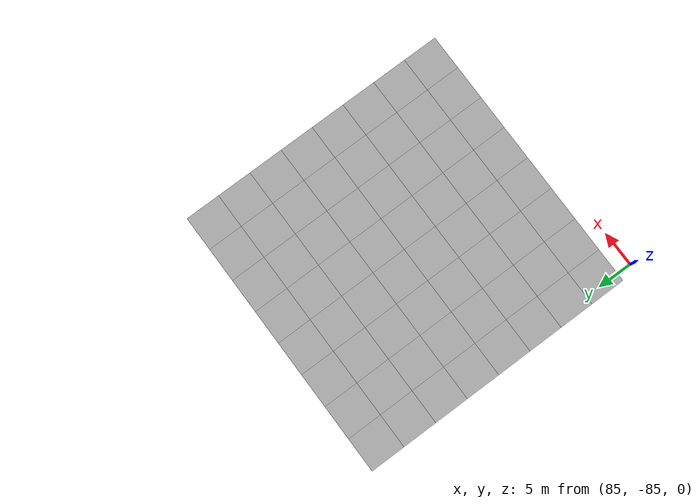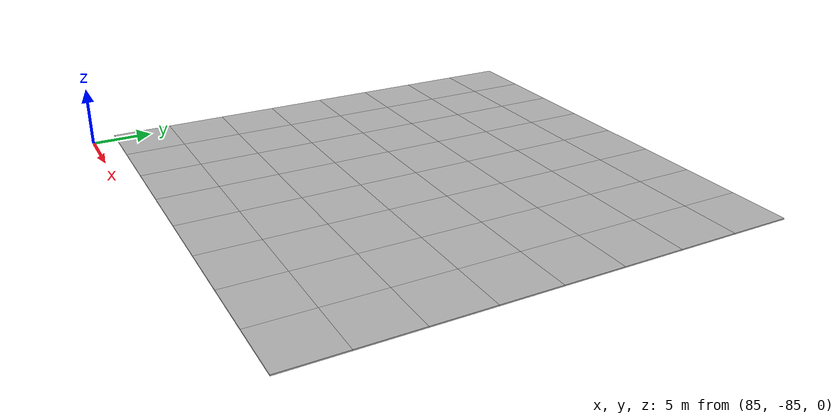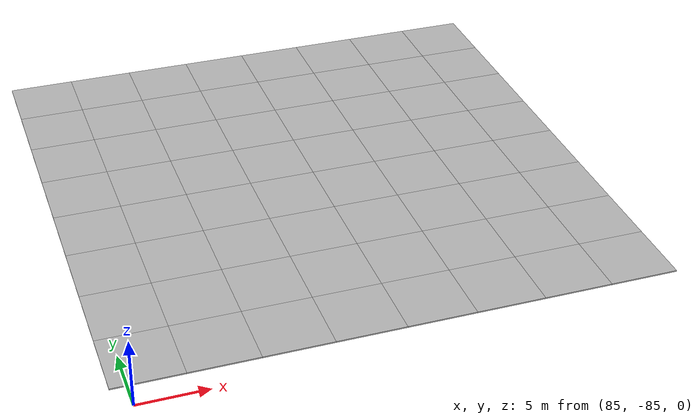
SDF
<sdf version="1.7">
 <world name="default">
  <model name="mud_plane_80x80_5">
   <model name="mud_plane_40x40_2">
    <model name="mud_plane_20x20">
     <model name="mud_plane">
      <static>1</static>
      <link name="link">
       <collision name="collision"><geometry><box><size>10 10 0.1</size></box></geometry></collision>
       <visual name="visual_1">
        <pose>-2.5 2.5 -0.05 0 -0 0</pose>
        <cast_shadows>0</cast_shadows>
        <geometry><box><size>5 5 0.1</size></box></geometry>
        <material>
         <script>
          <uri>model://mud_plane/materials/scripts</uri>
          <uri>model://mud_plane/materials/textures</uri>
          <name>vrc/mud</name>
         </script>
        </material>
       </visual>
       <visual name="visual_2">
        <pose>2.5 2.5 -0.05 0 -0 0</pose>
        <cast_shadows>0</cast_shadows>
        <geometry><box><size>5 5 0.1</size></box></geometry>
        <material>
         <script>
          <uri>model://mud_plane/materials/scripts</uri>
          <uri>model://mud_plane/materials/textures</uri>
          <name>vrc/mud</name>
         </script>
        </material>
       </visual>
       <visual name="visual_3">
        <pose>2.5 -2.5 -0.05 0 -0 0</pose>
        <cast_shadows>0</cast_shadows>
        <geometry><box><size>5 5 0.1</size></box></geometry>
        <material>
         <script>
          <uri>model://mud_plane/materials/scripts</uri>
          <uri>model://mud_plane/materials/textures</uri>
          <name>vrc/mud</name>
         </script>
        </material>
       </visual>
       <visual name="visual_4">
        <pose>-2.5 -2.5 -0.05 0 -0 0</pose>
        <cast_shadows>0</cast_shadows>
        <geometry><box><size>5 5 0.1</size></box></geometry>
        <material>
         <script>
          <uri>model://mud_plane/materials/scripts</uri>
          <uri>model://mud_plane/materials/textures</uri>
          <name>vrc/mud</name>
         </script>
        </material>
       </visual>
      </link>
      <pose>-4.99986 -4.99991 0 0 -0 0</pose>
     </model>
     <model name="mud_plane_0">
      <static>1</static>
      <link name="link">
       <collision name="collision"><geometry><box><size>10 10 0.1</size></box></geometry></collision>
       <visual name="visual_1">
        <pose>-2.5 2.5 -0.05 0 -0 0</pose>
        <cast_shadows>0</cast_shadows>
        <geometry><box><size>5 5 0.1</size></box></geometry>
        <material>
         <script>
          <uri>model://mud_plane/materials/scripts</uri>
          <uri>model://mud_plane/materials/textures</uri>
          <name>vrc/mud</name>
         </script>
        </material>
       </visual>
       <visual name="visual_2">
        <pose>2.5 2.5 -0.05 0 -0 0</pose>
        <cast_shadows>0</cast_shadows>
        <geometry><box><size>5 5 0.1</size></box></geometry>
        <material>
         <script>
          <uri>model://mud_plane/materials/scripts</uri>
          <uri>model://mud_plane/materials/textures</uri>
          <name>vrc/mud</name>
         </script>
        </material>
       </visual>
       <visual name="visual_3">
        <pose>2.5 -2.5 -0.05 0 -0 0</pose>
        <cast_shadows>0</cast_shadows>
        <geometry><box><size>5 5 0.1</size></box></geometry>
        <material>
         <script>
          <uri>model://mud_plane/materials/scripts</uri>
          <uri>model://mud_plane/materials/textures</uri>
          <name>vrc/mud</name>
         </script>
        </material>
       </visual>
       <visual name="visual_4">
        <pose>-2.5 -2.5 -0.05 0 -0 0</pose>
        <cast_shadows>0</cast_shadows>
        <geometry><box><size>5 5 0.1</size></box></geometry>
        <material>
         <script>
          <uri>model://mud_plane/materials/scripts</uri>
          <uri>model://mud_plane/materials/textures</uri>
          <name>vrc/mud</name>
         </script>
        </material>
       </visual>
      </link>
      <pose>-4.99946 4.99954 0 0 -0 0</pose>
     </model>
     <model name="mud_plane_1">
      <static>1</static>
      <link name="link">
       <collision name="collision"><geometry><box><size>10 10 0.1</size></box></geometry></collision>
       <visual name="visual_1">
        <pose>-2.5 2.5 -0.05 0 -0 0</pose>
        <cast_shadows>0</cast_shadows>
        <geometry><box><size>5 5 0.1</size></box></geometry>
        <material>
         <script>
          <uri>model://mud_plane/materials/scripts</uri>
          <uri>model://mud_plane/materials/textures</uri>
          <name>vrc/mud</name>
         </script>
        </material>
       </visual>
       <visual name="visual_2">
        <pose>2.5 2.5 -0.05 0 -0 0</pose>
        <cast_shadows>0</cast_shadows>
        <geometry><box><size>5 5 0.1</size></box></geometry>
        <material>
         <script>
          <uri>model://mud_plane/materials/scripts</uri>
          <uri>model://mud_plane/materials/textures</uri>
          <name>vrc/mud</name>
         </script>
        </material>
       </visual>
       <visual name="visual_3">
        <pose>2.5 -2.5 -0.05 0 -0 0</pose>
        <cast_shadows>0</cast_shadows>
        <geometry><box><size>5 5 0.1</size></box></geometry>
        <material>
         <script>
          <uri>model://mud_plane/materials/scripts</uri>
          <uri>model://mud_plane/materials/textures</uri>
          <name>vrc/mud</name>
         </script>
        </material>
       </visual>
       <visual name="visual_4">
        <pose>-2.5 -2.5 -0.05 0 -0 0</pose>
        <cast_shadows>0</cast_shadows>
        <geometry><box><size>5 5 0.1</size></box></geometry>
        <material>
         <script>
          <uri>model://mud_plane/materials/scripts</uri>
          <uri>model://mud_plane/materials/textures</uri>
          <name>vrc/mud</name>
         </script>
        </material>
       </visual>
      </link>
      <pose>4.99964 -4.99949 0 0 -0 0</pose>
     </model>
     <model name="mud_plane_2">
      <static>1</static>
      <link name="link">
       <collision name="collision"><geometry><box><size>10 10 0.1</size></box></geometry></collision>
       <visual name="visual_1">
        <pose>-2.5 2.5 -0.05 0 -0 0</pose>
        <cast_shadows>0</cast_shadows>
        <geometry><box><size>5 5 0.1</size></box></geometry>
        <material>
         <script>
          <uri>model://mud_plane/materials/scripts</uri>
          <uri>model://mud_plane/materials/textures</uri>
          <name>vrc/mud</name>
         </script>
        </material>
       </visual>
       <visual name="visual_2">
        <pose>2.5 2.5 -0.05 0 -0 0</pose>
        <cast_shadows>0</cast_shadows>
        <geometry><box><size>5 5 0.1</size></box></geometry>
        <material>
         <script>
          <uri>model://mud_plane/materials/scripts</uri>
          <uri>model://mud_plane/materials/textures</uri>
          <name>vrc/mud</name>
         </script>
        </material>
       </visual>
       <visual name="visual_3">
        <pose>2.5 -2.5 -0.05 0 -0 0</pose>
        <cast_shadows>0</cast_shadows>
        <geometry><box><size>5 5 0.1</size></box></geometry>
        <material>
         <script>
          <uri>model://mud_plane/materials/scripts</uri>
          <uri>model://mud_plane/materials/textures</uri>
          <name>vrc/mud</name>
         </script>
        </material>
       </visual>
       <visual name="visual_4">
        <pose>-2.5 -2.5 -0.05 0 -0 0</pose>
        <cast_shadows>0</cast_shadows>
        <geometry><box><size>5 5 0.1</size></box></geometry>
        <material>
         <script>
          <uri>model://mud_plane/materials/scripts</uri>
          <uri>model://mud_plane/materials/textures</uri>
          <name>vrc/mud</name>
         </script>
        </material>
       </visual>
      </link>
      <pose>4.99967 4.99986 0 0 -0 0</pose>
     </model>
     <static>0</static>
     <pose>-9.99895 9.99843 0 0 -0 0</pose>
    </model>
    <model name="mud_plane_20x20_0">
     <model name="mud_plane">
      <static>1</static>
      <link name="link">
       <collision name="collision"><geometry><box><size>10 10 0.1</size></box></geometry></collision>
       <visual name="visual_1">
        <pose>-2.5 2.5 -0.05 0 -0 0</pose>
        <cast_shadows>0</cast_shadows>
        <geometry><box><size>5 5 0.1</size></box></geometry>
        <material>
         <script>
          <uri>model://mud_plane/materials/scripts</uri>
          <uri>model://mud_plane/materials/textures</uri>
          <name>vrc/mud</name>
         </script>
        </material>
       </visual>
       <visual name="visual_2">
        <pose>2.5 2.5 -0.05 0 -0 0</pose>
        <cast_shadows>0</cast_shadows>
        <geometry><box><size>5 5 0.1</size></box></geometry>
        <material>
         <script>
          <uri>model://mud_plane/materials/scripts</uri>
          <uri>model://mud_plane/materials/textures</uri>
          <name>vrc/mud</name>
         </script>
        </material>
       </visual>
       <visual name="visual_3">
        <pose>2.5 -2.5 -0.05 0 -0 0</pose>
        <cast_shadows>0</cast_shadows>
        <geometry><box><size>5 5 0.1</size></box></geometry>
        <material>
         <script>
          <uri>model://mud_plane/materials/scripts</uri>
          <uri>model://mud_plane/materials/textures</uri>
          <name>vrc/mud</name>
         </script>
        </material>
       </visual>
       <visual name="visual_4">
        <pose>-2.5 -2.5 -0.05 0 -0 0</pose>
        <cast_shadows>0</cast_shadows>
        <geometry><box><size>5 5 0.1</size></box></geometry>
        <material>
         <script>
          <uri>model://mud_plane/materials/scripts</uri>
          <uri>model://mud_plane/materials/textures</uri>
          <name>vrc/mud</name>
         </script>
        </material>
       </visual>
      </link>
      <pose>-4.99986 -4.99991 0 0 -0 0</pose>
     </model>
     <model name="mud_plane_0">
      <static>1</static>
      <link name="link">
       <collision name="collision"><geometry><box><size>10 10 0.1</size></box></geometry></collision>
       <visual name="visual_1">
        <pose>-2.5 2.5 -0.05 0 -0 0</pose>
        <cast_shadows>0</cast_shadows>
        <geometry><box><size>5 5 0.1</size></box></geometry>
        <material>
         <script>
          <uri>model://mud_plane/materials/scripts</uri>
          <uri>model://mud_plane/materials/textures</uri>
          <name>vrc/mud</name>
         </script>
        </material>
       </visual>
       <visual name="visual_2">
        <pose>2.5 2.5 -0.05 0 -0 0</pose>
        <cast_shadows>0</cast_shadows>
        <geometry><box><size>5 5 0.1</size></box></geometry>
        <material>
         <script>
          <uri>model://mud_plane/materials/scripts</uri>
          <uri>model://mud_plane/materials/textures</uri>
          <name>vrc/mud</name>
         </script>
        </material>
       </visual>
       <visual name="visual_3">
        <pose>2.5 -2.5 -0.05 0 -0 0</pose>
        <cast_shadows>0</cast_shadows>
        <geometry><box><size>5 5 0.1</size></box></geometry>
        <material>
         <script>
          <uri>model://mud_plane/materials/scripts</uri>
          <uri>model://mud_plane/materials/textures</uri>
          <name>vrc/mud</name>
         </script>
        </material>
       </visual>
       <visual name="visual_4">
        <pose>-2.5 -2.5 -0.05 0 -0 0</pose>
        <cast_shadows>0</cast_shadows>
        <geometry><box><size>5 5 0.1</size></box></geometry>
        <material>
         <script>
          <uri>model://mud_plane/materials/scripts</uri>
          <uri>model://mud_plane/materials/textures</uri>
          <name>vrc/mud</name>
         </script>
        </material>
       </visual>
      </link>
      <pose>-4.99946 4.99954 0 0 -0 0</pose>
     </model>
     <model name="mud_plane_1">
      <static>1</static>
      <link name="link">
       <collision name="collision"><geometry><box><size>10 10 0.1</size></box></geometry></collision>
       <visual name="visual_1">
        <pose>-2.5 2.5 -0.05 0 -0 0</pose>
        <cast_shadows>0</cast_shadows>
        <geometry><box><size>5 5 0.1</size></box></geometry>
        <material>
         <script>
          <uri>model://mud_plane/materials/scripts</uri>
          <uri>model://mud_plane/materials/textures</uri>
          <name>vrc/mud</name>
         </script>
        </material>
       </visual>
       <visual name="visual_2">
        <pose>2.5 2.5 -0.05 0 -0 0</pose>
        <cast_shadows>0</cast_shadows>
        <geometry><box><size>5 5 0.1</size></box></geometry>
        <material>
         <script>
          <uri>model://mud_plane/materials/scripts</uri>
          <uri>model://mud_plane/materials/textures</uri>
          <name>vrc/mud</name>
         </script>
        </material>
       </visual>
       <visual name="visual_3">
        <pose>2.5 -2.5 -0.05 0 -0 0</pose>
        <cast_shadows>0</cast_shadows>
        <geometry><box><size>5 5 0.1</size></box></geometry>
        <material>
         <script>
          <uri>model://mud_plane/materials/scripts</uri>
          <uri>model://mud_plane/materials/textures</uri>
          <name>vrc/mud</name>
         </script>
        </material>
       </visual>
       <visual name="visual_4">
        <pose>-2.5 -2.5 -0.05 0 -0 0</pose>
        <cast_shadows>0</cast_shadows>
        <geometry><box><size>5 5 0.1</size></box></geometry>
        <material>
         <script>
          <uri>model://mud_plane/materials/scripts</uri>
          <uri>model://mud_plane/materials/textures</uri>
          <name>vrc/mud</name>
         </script>
        </material>
       </visual>
      </link>
      <pose>4.99964 -4.99949 0 0 -0 0</pose>
     </model>
     <model name="mud_plane_2">
      <static>1</static>
      <link name="link">
       <collision name="collision"><geometry><box><size>10 10 0.1</size></box></geometry></collision>
       <visual name="visual_1">
        <pose>-2.5 2.5 -0.05 0 -0 0</pose>
        <cast_shadows>0</cast_shadows>
        <geometry><box><size>5 5 0.1</size></box></geometry>
        <material>
         <script>
          <uri>model://mud_plane/materials/scripts</uri>
          <uri>model://mud_plane/materials/textures</uri>
          <name>vrc/mud</name>
         </script>
        </material>
       </visual>
       <visual name="visual_2">
        <pose>2.5 2.5 -0.05 0 -0 0</pose>
        <cast_shadows>0</cast_shadows>
        <geometry><box><size>5 5 0.1</size></box></geometry>
        <material>
         <script>
          <uri>model://mud_plane/materials/scripts</uri>
          <uri>model://mud_plane/materials/textures</uri>
          <name>vrc/mud</name>
         </script>
        </material>
       </visual>
       <visual name="visual_3">
        <pose>2.5 -2.5 -0.05 0 -0 0</pose>
        <cast_shadows>0</cast_shadows>
        <geometry><box><size>5 5 0.1</size></box></geometry>
        <material>
         <script>
          <uri>model://mud_plane/materials/scripts</uri>
          <uri>model://mud_plane/materials/textures</uri>
          <name>vrc/mud</name>
         </script>
        </material>
       </visual>
       <visual name="visual_4">
        <pose>-2.5 -2.5 -0.05 0 -0 0</pose>
        <cast_shadows>0</cast_shadows>
        <geometry><box><size>5 5 0.1</size></box></geometry>
        <material>
         <script>
          <uri>model://mud_plane/materials/scripts</uri>
          <uri>model://mud_plane/materials/textures</uri>
          <name>vrc/mud</name>
         </script>
        </material>
       </visual>
      </link>
      <pose>4.99967 4.99986 0 0 -0 0</pose>
     </model>
     <static>0</static>
     <pose>9.99933 9.9997 0 0 -0 0</pose>
    </model>
    <model name="mud_plane_20x20_1">
     <model name="mud_plane">
      <static>1</static>
      <link name="link">
       <collision name="collision"><geometry><box><size>10 10 0.1</size></box></geometry></collision>
       <visual name="visual_1">
        <pose>-2.5 2.5 -0.05 0 -0 0</pose>
        <cast_shadows>0</cast_shadows>
        <geometry><box><size>5 5 0.1</size></box></geometry>
        <material>
         <script>
          <uri>model://mud_plane/materials/scripts</uri>
          <uri>model://mud_plane/materials/textures</uri>
          <name>vrc/mud</name>
         </script>
        </material>
       </visual>
       <visual name="visual_2">
        <pose>2.5 2.5 -0.05 0 -0 0</pose>
        <cast_shadows>0</cast_shadows>
        <geometry><box><size>5 5 0.1</size></box></geometry>
        <material>
         <script>
          <uri>model://mud_plane/materials/scripts</uri>
          <uri>model://mud_plane/materials/textures</uri>
          <name>vrc/mud</name>
         </script>
        </material>
       </visual>
       <visual name="visual_3">
        <pose>2.5 -2.5 -0.05 0 -0 0</pose>
        <cast_shadows>0</cast_shadows>
        <geometry><box><size>5 5 0.1</size></box></geometry>
        <material>
         <script>
          <uri>model://mud_plane/materials/scripts</uri>
          <uri>model://mud_plane/materials/textures</uri>
          <name>vrc/mud</name>
         </script>
        </material>
       </visual>
       <visual name="visual_4">
        <pose>-2.5 -2.5 -0.05 0 -0 0</pose>
        <cast_shadows>0</cast_shadows>
        <geometry><box><size>5 5 0.1</size></box></geometry>
        <material>
         <script>
          <uri>model://mud_plane/materials/scripts</uri>
          <uri>model://mud_plane/materials/textures</uri>
          <name>vrc/mud</name>
         </script>
        </material>
       </visual>
      </link>
      <pose>-4.99986 -4.99991 0 0 -0 0</pose>
     </model>
     <model name="mud_plane_0">
      <static>1</static>
      <link name="link">
       <collision name="collision"><geometry><box><size>10 10 0.1</size></box></geometry></collision>
       <visual name="visual_1">
        <pose>-2.5 2.5 -0.05 0 -0 0</pose>
        <cast_shadows>0</cast_shadows>
        <geometry><box><size>5 5 0.1</size></box></geometry>
        <material>
         <script>
          <uri>model://mud_plane/materials/scripts</uri>
          <uri>model://mud_plane/materials/textures</uri>
          <name>vrc/mud</name>
         </script>
        </material>
       </visual>
       <visual name="visual_2">
        <pose>2.5 2.5 -0.05 0 -0 0</pose>
        <cast_shadows>0</cast_shadows>
        <geometry><box><size>5 5 0.1</size></box></geometry>
        <material>
         <script>
          <uri>model://mud_plane/materials/scripts</uri>
          <uri>model://mud_plane/materials/textures</uri>
          <name>vrc/mud</name>
         </script>
        </material>
       </visual>
       <visual name="visual_3">
        <pose>2.5 -2.5 -0.05 0 -0 0</pose>
        <cast_shadows>0</cast_shadows>
        <geometry><box><size>5 5 0.1</size></box></geometry>
        <material>
         <script>
          <uri>model://mud_plane/materials/scripts</uri>
          <uri>model://mud_plane/materials/textures</uri>
          <name>vrc/mud</name>
         </script>
        </material>
       </visual>
       <visual name="visual_4">
        <pose>-2.5 -2.5 -0.05 0 -0 0</pose>
        <cast_shadows>0</cast_shadows>
        <geometry><box><size>5 5 0.1</size></box></geometry>
        <material>
         <script>
          <uri>model://mud_plane/materials/scripts</uri>
          <uri>model://mud_plane/materials/textures</uri>
          <name>vrc/mud</name>
         </script>
        </material>
       </visual>
      </link>
      <pose>-4.99946 4.99954 0 0 -0 0</pose>
     </model>
     <model name="mud_plane_1">
      <static>1</static>
      <link name="link">
       <collision name="collision"><geometry><box><size>10 10 0.1</size></box></geometry></collision>
       <visual name="visual_1">
        <pose>-2.5 2.5 -0.05 0 -0 0</pose>
        <cast_shadows>0</cast_shadows>
        <geometry><box><size>5 5 0.1</size></box></geometry>
        <material>
         <script>
          <uri>model://mud_plane/materials/scripts</uri>
          <uri>model://mud_plane/materials/textures</uri>
          <name>vrc/mud</name>
         </script>
        </material>
       </visual>
       <visual name="visual_2">
        <pose>2.5 2.5 -0.05 0 -0 0</pose>
        <cast_shadows>0</cast_shadows>
        <geometry><box><size>5 5 0.1</size></box></geometry>
        <material>
         <script>
          <uri>model://mud_plane/materials/scripts</uri>
          <uri>model://mud_plane/materials/textures</uri>
          <name>vrc/mud</name>
         </script>
        </material>
       </visual>
       <visual name="visual_3">
        <pose>2.5 -2.5 -0.05 0 -0 0</pose>
        <cast_shadows>0</cast_shadows>
        <geometry><box><size>5 5 0.1</size></box></geometry>
        <material>
         <script>
          <uri>model://mud_plane/materials/scripts</uri>
          <uri>model://mud_plane/materials/textures</uri>
          <name>vrc/mud</name>
         </script>
        </material>
       </visual>
       <visual name="visual_4">
        <pose>-2.5 -2.5 -0.05 0 -0 0</pose>
        <cast_shadows>0</cast_shadows>
        <geometry><box><size>5 5 0.1</size></box></geometry>
        <material>
         <script>
          <uri>model://mud_plane/materials/scripts</uri>
          <uri>model://mud_plane/materials/textures</uri>
          <name>vrc/mud</name>
         </script>
        </material>
       </visual>
      </link>
      <pose>4.99964 -4.99949 0 0 -0 0</pose>
     </model>
     <model name="mud_plane_2">
      <static>1</static>
      <link name="link">
       <collision name="collision"><geometry><box><size>10 10 0.1</size></box></geometry></collision>
       <visual name="visual_1">
        <pose>-2.5 2.5 -0.05 0 -0 0</pose>
        <cast_shadows>0</cast_shadows>
        <geometry><box><size>5 5 0.1</size></box></geometry>
        <material>
         <script>
          <uri>model://mud_plane/materials/scripts</uri>
          <uri>model://mud_plane/materials/textures</uri>
          <name>vrc/mud</name>
         </script>
        </material>
       </visual>
       <visual name="visual_2">
        <pose>2.5 2.5 -0.05 0 -0 0</pose>
        <cast_shadows>0</cast_shadows>
        <geometry><box><size>5 5 0.1</size></box></geometry>
        <material>
         <script>
          <uri>model://mud_plane/materials/scripts</uri>
          <uri>model://mud_plane/materials/textures</uri>
          <name>vrc/mud</name>
         </script>
        </material>
       </visual>
       <visual name="visual_3">
        <pose>2.5 -2.5 -0.05 0 -0 0</pose>
        <cast_shadows>0</cast_shadows>
        <geometry><box><size>5 5 0.1</size></box></geometry>
        <material>
         <script>
          <uri>model://mud_plane/materials/scripts</uri>
          <uri>model://mud_plane/materials/textures</uri>
          <name>vrc/mud</name>
         </script>
        </material>
       </visual>
       <visual name="visual_4">
        <pose>-2.5 -2.5 -0.05 0 -0 0</pose>
        <cast_shadows>0</cast_shadows>
        <geometry><box><size>5 5 0.1</size></box></geometry>
        <material>
         <script>
          <uri>model://mud_plane/materials/scripts</uri>
          <uri>model://mud_plane/materials/textures</uri>
          <name>vrc/mud</name>
         </script>
        </material>
       </visual>
      </link>
      <pose>4.99967 4.99986 0 0 -0 0</pose>
     </model>
     <static>0</static>
     <pose>9.9993 -9.99877 0 0 -0 0</pose>
    </model>
    <model name="mud_plane_20x20_2">
     <model name="mud_plane">
      <static>1</static>
      <link name="link">
       <collision name="collision"><geometry><box><size>10 10 0.1</size></box></geometry></collision>
       <visual name="visual_1">
        <pose>-2.5 2.5 -0.05 0 -0 0</pose>
        <cast_shadows>0</cast_shadows>
        <geometry><box><size>5 5 0.1</size></box></geometry>
        <material>
         <script>
          <uri>model://mud_plane/materials/scripts</uri>
          <uri>model://mud_plane/materials/textures</uri>
          <name>vrc/mud</name>
         </script>
        </material>
       </visual>
       <visual name="visual_2">
        <pose>2.5 2.5 -0.05 0 -0 0</pose>
        <cast_shadows>0</cast_shadows>
        <geometry><box><size>5 5 0.1</size></box></geometry>
        <material>
         <script>
          <uri>model://mud_plane/materials/scripts</uri>
          <uri>model://mud_plane/materials/textures</uri>
          <name>vrc/mud</name>
         </script>
        </material>
       </visual>
       <visual name="visual_3">
        <pose>2.5 -2.5 -0.05 0 -0 0</pose>
        <cast_shadows>0</cast_shadows>
        <geometry><box><size>5 5 0.1</size></box></geometry>
        <material>
         <script>
          <uri>model://mud_plane/materials/scripts</uri>
          <uri>model://mud_plane/materials/textures</uri>
          <name>vrc/mud</name>
         </script>
        </material>
       </visual>
       <visual name="visual_4">
        <pose>-2.5 -2.5 -0.05 0 -0 0</pose>
        <cast_shadows>0</cast_shadows>
        <geometry><box><size>5 5 0.1</size></box></geometry>
        <material>
         <script>
          <uri>model://mud_plane/materials/scripts</uri>
          <uri>model://mud_plane/materials/textures</uri>
          <name>vrc/mud</name>
         </script>
        </material>
       </visual>
      </link>
      <pose>-4.99986 -4.99991 0 0 -0 0</pose>
     </model>
     <model name="mud_plane_0">
      <static>1</static>
      <link name="link">
       <collision name="collision"><geometry><box><size>10 10 0.1</size></box></geometry></collision>
       <visual name="visual_1">
        <pose>-2.5 2.5 -0.05 0 -0 0</pose>
        <cast_shadows>0</cast_shadows>
        <geometry><box><size>5 5 0.1</size></box></geometry>
        <material>
         <script>
          <uri>model://mud_plane/materials/scripts</uri>
          <uri>model://mud_plane/materials/textures</uri>
          <name>vrc/mud</name>
         </script>
        </material>
       </visual>
       <visual name="visual_2">
        <pose>2.5 2.5 -0.05 0 -0 0</pose>
        <cast_shadows>0</cast_shadows>
        <geometry><box><size>5 5 0.1</size></box></geometry>
        <material>
         <script>
          <uri>model://mud_plane/materials/scripts</uri>
          <uri>model://mud_plane/materials/textures</uri>
          <name>vrc/mud</name>
         </script>
        </material>
       </visual>
       <visual name="visual_3">
        <pose>2.5 -2.5 -0.05 0 -0 0</pose>
        <cast_shadows>0</cast_shadows>
        <geometry><box><size>5 5 0.1</size></box></geometry>
        <material>
         <script>
          <uri>model://mud_plane/materials/scripts</uri>
          <uri>model://mud_plane/materials/textures</uri>
          <name>vrc/mud</name>
         </script>
        </material>
       </visual>
       <visual name="visual_4">
        <pose>-2.5 -2.5 -0.05 0 -0 0</pose>
        <cast_shadows>0</cast_shadows>
        <geometry><box><size>5 5 0.1</size></box></geometry>
        <material>
         <script>
          <uri>model://mud_plane/materials/scripts</uri>
          <uri>model://mud_plane/materials/textures</uri>
          <name>vrc/mud</name>
         </script>
        </material>
       </visual>
      </link>
      <pose>-4.99946 4.99954 0 0 -0 0</pose>
     </model>
     <model name="mud_plane_1">
      <static>1</static>
      <link name="link">
       <collision name="collision"><geometry><box><size>10 10 0.1</size></box></geometry></collision>
       <visual name="visual_1">
        <pose>-2.5 2.5 -0.05 0 -0 0</pose>
        <cast_shadows>0</cast_shadows>
        <geometry><box><size>5 5 0.1</size></box></geometry>
        <material>
         <script>
          <uri>model://mud_plane/materials/scripts</uri>
          <uri>model://mud_plane/materials/textures</uri>
          <name>vrc/mud</name>
         </script>
        </material>
       </visual>
       <visual name="visual_2">
        <pose>2.5 2.5 -0.05 0 -0 0</pose>
        <cast_shadows>0</cast_shadows>
        <geometry><box><size>5 5 0.1</size></box></geometry>
        <material>
         <script>
          <uri>model://mud_plane/materials/scripts</uri>
          <uri>model://mud_plane/materials/textures</uri>
          <name>vrc/mud</name>
         </script>
        </material>
       </visual>
       <visual name="visual_3">
        <pose>2.5 -2.5 -0.05 0 -0 0</pose>
        <cast_shadows>0</cast_shadows>
        <geometry><box><size>5 5 0.1</size></box></geometry>
        <material>
         <script>
          <uri>model://mud_plane/materials/scripts</uri>
          <uri>model://mud_plane/materials/textures</uri>
          <name>vrc/mud</name>
         </script>
        </material>
       </visual>
       <visual name="visual_4">
        <pose>-2.5 -2.5 -0.05 0 -0 0</pose>
        <cast_shadows>0</cast_shadows>
        <geometry><box><size>5 5 0.1</size></box></geometry>
        <material>
         <script>
          <uri>model://mud_plane/materials/scripts</uri>
          <uri>model://mud_plane/materials/textures</uri>
          <name>vrc/mud</name>
         </script>
        </material>
       </visual>
      </link>
      <pose>4.99964 -4.99949 0 0 -0 0</pose>
     </model>
     <model name="mud_plane_2">
      <static>1</static>
      <link name="link">
       <collision name="collision"><geometry><box><size>10 10 0.1</size></box></geometry></collision>
       <visual name="visual_1">
        <pose>-2.5 2.5 -0.05 0 -0 0</pose>
        <cast_shadows>0</cast_shadows>
        <geometry><box><size>5 5 0.1</size></box></geometry>
        <material>
         <script>
          <uri>model://mud_plane/materials/scripts</uri>
          <uri>model://mud_plane/materials/textures</uri>
          <name>vrc/mud</name>
         </script>
        </material>
       </visual>
       <visual name="visual_2">
        <pose>2.5 2.5 -0.05 0 -0 0</pose>
        <cast_shadows>0</cast_shadows>
        <geometry><box><size>5 5 0.1</size></box></geometry>
        <material>
         <script>
          <uri>model://mud_plane/materials/scripts</uri>
          <uri>model://mud_plane/materials/textures</uri>
          <name>vrc/mud</name>
         </script>
        </material>
       </visual>
       <visual name="visual_3">
        <pose>2.5 -2.5 -0.05 0 -0 0</pose>
        <cast_shadows>0</cast_shadows>
        <geometry><box><size>5 5 0.1</size></box></geometry>
        <material>
         <script>
          <uri>model://mud_plane/materials/scripts</uri>
          <uri>model://mud_plane/materials/textures</uri>
          <name>vrc/mud</name>
         </script>
        </material>
       </visual>
       <visual name="visual_4">
        <pose>-2.5 -2.5 -0.05 0 -0 0</pose>
        <cast_shadows>0</cast_shadows>
        <geometry><box><size>5 5 0.1</size></box></geometry>
        <material>
         <script>
          <uri>model://mud_plane/materials/scripts</uri>
          <uri>model://mud_plane/materials/textures</uri>
          <name>vrc/mud</name>
         </script>
        </material>
       </visual>
      </link>
      <pose>4.99967 4.99986 0 0 -0 0</pose>
     </model>
     <static>0</static>
     <pose>-9.99969 -9.99935 0 0 -0 0</pose>
    </model>
    <static>0</static>
    <pose>-19.9989 -19.9993 0 0 -0 0</pose>
   </model>
   <static>0</static>
   <pose>123.857 -42.9997 0 0 -0 0</pose>
  </model>
 </world>
</sdf>
